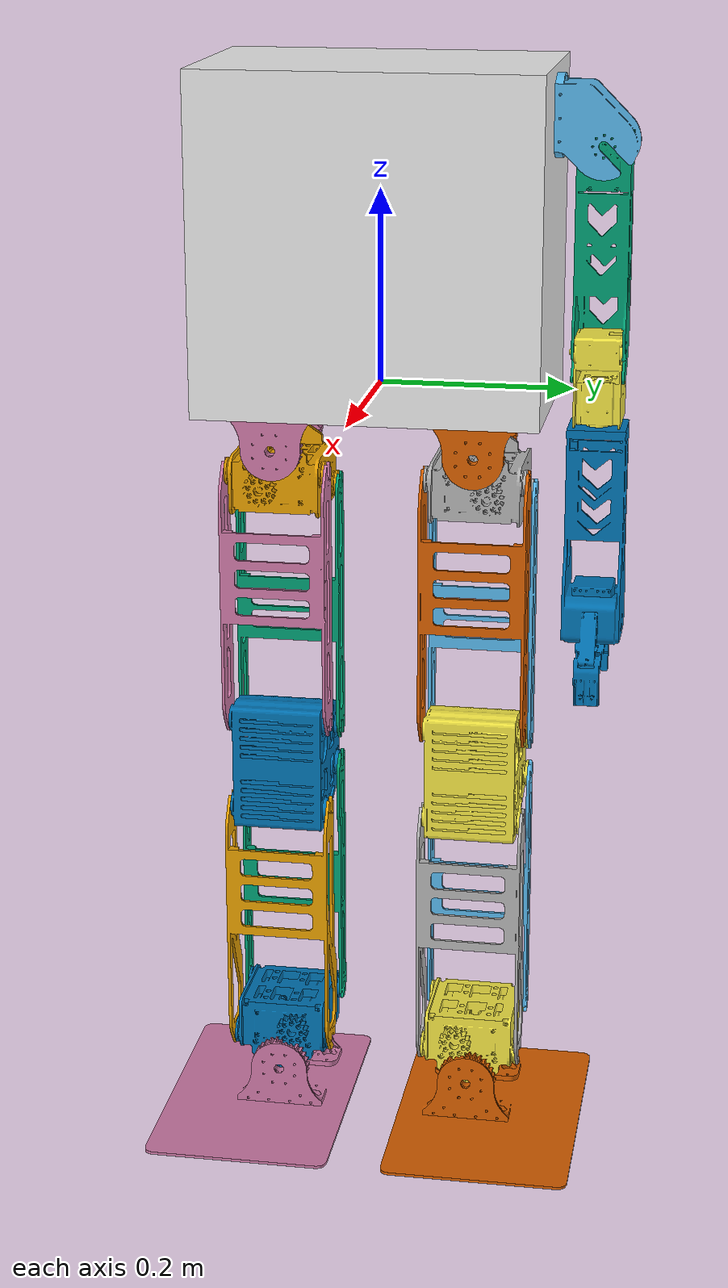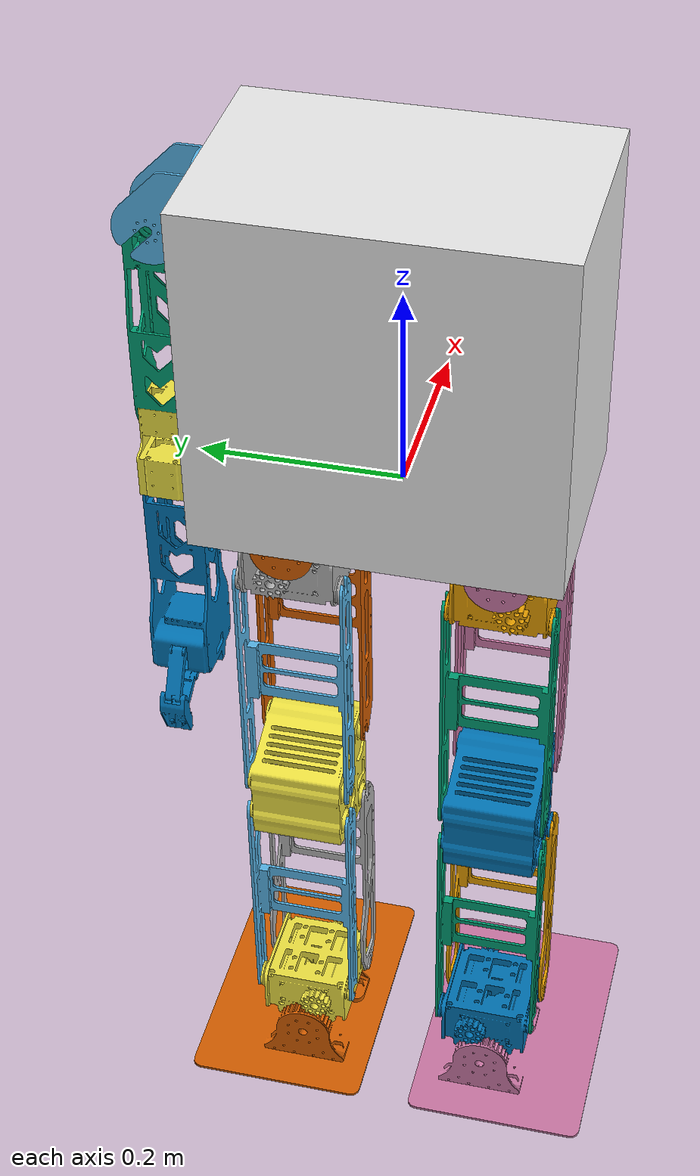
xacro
<?xml version="1.0"?>
<robot name="humanoid" xmlns:xacro="http://www.ros.org/wiki/xacro">
<xacro:include filename="$(find humanoid_description)/urdf/humanoid.gazebo.xacro" />
<xacro:include filename="$(find humanoid_description)/urdf/humanoid.transmisi.xacro" />
    <link name="base_link">
        <visual>
            <origin xyz="0.000 0.00 0.00" rpy="0.00 0.00 0.00"/>
            <geometry>
                <mesh filename="package://humanoid_description/meshes/visual/base.STL"/>
            </geometry>
        </visual>
        <collision>
            <origin xyz="0.0 0.0 0.0" rpy="0.0 0.0 0.0"/>
                <geometry>
                    <mesh filename="package://humanoid_description/meshes/collision/base_col.STL"/>
                </geometry>
        </collision>
        <inertial>
            <origin xyz="-0.004 0.000 0.201"/>
            <mass value="5.292"/>
            <inertia ixx="0.119892" ixy="-0.000007" ixz="-0.001838"
                     iyy="0.072071" iyz="-0.000003"
                     izz="0.074976"/>
        </inertial>
    </link>
<!--|||||||||||||||||||||||||||||||||||     SHOULDER          |||||||||||||||||||||||||||||||||||||||||||||||-->
    <joint name="Lshoulder_joint" type="revolute">
        <parent link="base_link"/>
        <child link="Lshoulder_link"/>
        <origin xyz="0.000034 0.177209 0.276882" rpy="0.0 0.0 0.0"/>
        <axis xyz="0 1 0"/>
        <limit lower="-0.45" upper="0.45" effort="10" velocity="3.14"/>
    </joint>
    <link name="Lshoulder_link">
        <visual>
            <origin xyz="0.000 0.000 0.000" rpy="0.00 0.00 0.00"/>
            <geometry>
                <mesh filename="package://humanoid_description/meshes/visual/Lshoulder.STL"/>
            </geometry>
        </visual>
        <collision>
            <origin xyz="0.0 0.0 0.0" rpy="0.0 0.0 0.0"/>
                <geometry>
                    <mesh filename="package://humanoid_description/meshes/collision/Lshoulder_col.STL"/>
                </geometry>
        </collision>
        <inertial>
            <origin xyz="0.000018 0.025567 -0.008154"/>
            <mass value="0.124321"/>
            <inertia ixx="0.000142" ixy="0.000000" ixz="0.000000"
                     iyy="0.000143" iyz="-0.000024"
                     izz="0.000138"/>
        </inertial>
    </link>
    <xacro:insert_transmission name="Lshoulder_joint" />

<!--|||||||||||||||||||||||||||||||||||        ARM           |||||||||||||||||||||||||||||||||||||||||||||||-->
    <joint name="Larm_joint" type="revolute">
        <parent link="Lshoulder_link"/>
        <child link="Larm_link"/>
        <origin xyz="0.02506 0.049194 -0.026717" rpy="0.0 0.0 0.0"/>
        <axis xyz="1 0 0"/>
        <limit lower="-0.15" upper="0.45" effort="10" velocity="3.14"/>
    </joint>
    <link name="Larm_link">
        <visual>
            <origin xyz="0.000 0.000 0.000" rpy="0.00 0.00 0.00"/>
            <geometry>
                <mesh filename="package://humanoid_description/meshes/visual/Larm.STL"/>
            </geometry>
        </visual>
        <collision>
            <origin xyz="0.0 0.0 0.0" rpy="0.0 0.0 0.0"/>
                <geometry>
                    <mesh filename="package://humanoid_description/meshes/collision/Larm_col.STL"/>
                </geometry>
        </collision>
        <inertial>
            <origin xyz="-0.024138 0.000000 -0.055244"/>
            <mass value="0.536868"/>
            <inertia ixx="0.002466" ixy="0.000000" ixz="0.000038"
                     iyy="0.002420" iyz="0.000000"
                     izz="0.000298"/>
        </inertial>
    </link>
    <xacro:insert_transmission name="Larm_joint" />
<!--|||||||||||||||||||||||||||||||||||     ELBOW          |||||||||||||||||||||||||||||||||||||||||||||||-->
    <joint name="Lelbow_joint" type="revolute">
        <parent link="Larm_link"/>
        <child link="Lelbow_link"/>
        <origin xyz="-0.0079 -0.0245 -0.207906" rpy="0.0 0.0 0.0"/>
        <axis xyz="0 1 0"/>
        <limit lower="-0.45" upper="0.45" effort="10" velocity="3.14"/>
    </joint>
    <link name="Lelbow_link">
        <visual>
            <origin xyz="0.000 0.000 0.000" rpy="0.00 0.00 0.00"/>
            <geometry>
                <mesh filename="package://humanoid_description/meshes/visual/Lelbow.STL"/>
            </geometry>
        </visual>
        <collision>
            <origin xyz="0.0 0.0 0.0" rpy="0.0 0.0 0.0"/>
                <geometry>
                    <mesh filename="package://humanoid_description/meshes/collision/Lelbow_col.STL"/>
                </geometry>
        </collision>
        <inertial>
            <origin xyz="-0.023724 0.024235 -0.031395"/>
            <mass value="0.587791"/>
            <inertia ixx="0.000608" ixy="-0.000002" ixz="0.000110"
                     iyy="0.000697" iyz="-0.000005"
                     izz="0.000322"/>
        </inertial>
    </link>
    <xacro:insert_transmission name="Lelbow_joint" />
<!--|||||||||||||||||||||||||||||||||||       HAND          |||||||||||||||||||||||||||||||||||||||||||||||-->
    <joint name="Lhand_joint" type="revolute">
        <parent link="Lelbow_link"/>
        <child link="Lhand_link"/>
        <origin xyz="-0.0155 0.0245 -0.078296" rpy="0.0 0.0 0.0"/>
        <axis xyz="0 0 1"/>
        <limit lower="-0.45" upper="0.45" effort="10" velocity="3.14"/>
    </joint>
    <link name="Lhand_link">
        <visual>
            <origin xyz="0.000 0.000 0.000" rpy="0.00 0.00 0.00"/>
            <geometry>
                <mesh filename="package://humanoid_description/meshes/visual/Lhand.STL"/>
            </geometry>
        </visual>
        <collision>
            <origin xyz="0.0 0.0 0.0" rpy="0.0 0.0 0.0"/>
                <geometry>
                    <mesh filename="package://humanoid_description/meshes/collision/Lhand_col.STL"/>
                </geometry>
        </collision>
        <inertial>
            <origin xyz="-0.000418 0.000039 -0.164104"/>
            <mass value="0.772383"/>
            <inertia ixx="0.003601" ixy="-0.000000" ixz="0.000011"
                     iyy="0.003625" iyz="0.000001"
                     izz="0.000636"/>
        </inertial>
    </link>
    <xacro:insert_transmission name="Lhand_joint" />
<!--|||||||||||||||||||||||||||||||||||     HIP  YAW         |||||||||||||||||||||||||||||||||||||||||||||||-->
    <joint name="Lhip_yaw_joint" type="revolute">
        <parent link="base_link"/>
        <child link="Lhip_yaw_link"/>
        <origin xyz="0.000 0.105 -0.02" rpy="0.0 0.0 0.0"/>
        <axis xyz="0 0 1"/>
        <limit lower="-0.45" upper="0.45" effort="10" velocity="3.14"/>
    </joint>
    <link name="Lhip_yaw_link">
        <visual>
            <origin xyz="0.000 0.000 0.000" rpy="0.00 0.00 0.00"/>
            <geometry>
                <mesh filename="package://humanoid_description/meshes/visual/Lhip_yaw.STL"/>
            </geometry>
        </visual>
        <collision>
            <origin xyz="0.0 0.0 0.0" rpy="0.0 0.0 0.0"/>
                <geometry>
                    <mesh filename="package://humanoid_description/meshes/collision/Lhip_yaw_col.STL"/>
                </geometry>
        </collision>
        <inertial>
            <origin xyz="0.000 0.000 -0.026189"/>
            <mass value="0.408755"/>
            <inertia ixx="0.000164" ixy="0.000000" ixz="0.000001"
                     iyy="0.000476" iyz="0.000000"
                     izz="0.000486"/>
        </inertial>
    </link>
    <joint name="Rhip_yaw_joint" type="revolute">
        <parent link="base_link"/>
        <child link="Rhip_yaw_link"/>
        <origin xyz="0.000 -0.105 -0.02" rpy="0.0 0.0 0.0"/>
        <axis xyz="0 0 1"/>
        <limit lower="-0.45" upper="0.45" effort="10" velocity="3.14"/>
    </joint>
    <link name="Rhip_yaw_link">
        <visual>
            <origin xyz="0.000 0.000 0.000" rpy="0.00 0.00 0.00"/>
            <geometry>
                <mesh filename="package://humanoid_description/meshes/visual/Rhip_yaw.STL"/>
            </geometry>
        </visual>
        <collision>
            <origin xyz="0.0 0.0 0.0" rpy="0.0 0.0 0.0"/>
                <geometry>
                    <mesh filename="package://humanoid_description/meshes/collision/Rhip_yaw_col.STL"/>
                </geometry>
        </collision>
        <inertial>
            <origin xyz="0.000 0.000 -0.026189"/>
            <mass value="0.408755"/>
            <inertia ixx="0.000164" ixy="0.000000" ixz="0.000001"
                     iyy="0.000476" iyz="0.000000"
                     izz="0.000486"/>
        </inertial>
    </link>
    <xacro:insert_transmission name="Rhip_yaw_joint" />
    <xacro:insert_transmission name="Lhip_yaw_joint" />
<!--|||||||||||||||||||||||||||||||||||     HIP  ROLL        |||||||||||||||||||||||||||||||||||||||||||||||-->
   <joint name="Lhip_roll_joint" type="revolute">
        <parent link="Lhip_yaw_link"/>
        <child link="Lhip_roll_link"/>
        <origin xyz="0.05179 0.0 -0.0425" rpy="0.0 0.0 0.0"/>
        <limit lower="-0.45" upper="0.45" effort="100.0" velocity="3.14"/>
        <axis xyz="1 0 0"/>
    </joint>
    <link name="Lhip_roll_link">
        <visual>
            <origin xyz="0.000 0.000 0.000" rpy="0.00 0.00 0.00"/>
            <geometry>
                <mesh filename="package://humanoid_description/meshes/visual/Lhip_roll.STL"/>
            </geometry>
        </visual>
        <collision>
            <origin xyz="0.0 0.0 0.0" rpy="0.0 0.0 0.0"/>
                <geometry>
                    <mesh filename="package://humanoid_description/meshes/collision/Lhip_roll_col.STL"/>
                </geometry>
        </collision>
        <inertial>
            <origin xyz="-0.051690 -0.000153 -0.041860"/>
            <mass value="1.107543"/>
            <inertia ixx="0.001185" ixy="-0.000000" ixz="0.000012"
                     iyy="0.001362" iyz="0.000001"
                     izz="0.001901"/>
        </inertial>
    </link>
    <joint name="Rhip_roll_joint" type="revolute">
        <parent link="Rhip_yaw_link"/>
        <child link="Rhip_roll_link"/>
        <origin xyz="0.05179 0.0 -0.0425" rpy="0.0 0.0 0.0"/>
        <limit lower="-0.45" upper="0.45" effort="10.0" velocity="3.14"/>
        <axis xyz="1 0 0"/>
    </joint>
    <link name="Rhip_roll_link">
        <visual>
            <origin xyz="0.000 0.000 0.000" rpy="0.00 0.00 0.00"/>
            <geometry>
                <mesh filename="package://humanoid_description/meshes/visual/Rhip_roll.STL"/>
            </geometry>
        </visual>
        <collision>
            <origin xyz="0.0 0.0 0.0" rpy="0.0 0.0 0.0"/>
                <geometry>
                    <mesh filename="package://humanoid_description/meshes/collision/Rhip_roll_col.STL"/>
                </geometry>
        </collision>
        <inertial>
            <origin xyz="-0.051690 -0.000153 -0.041860"/>
            <mass value="1.107543"/>
            <inertia ixx="0.001185" ixy="-0.000000" ixz="0.000012"
                     iyy="0.001362" iyz="0.000001"
                     izz="0.001901"/>
        </inertial>
    </link>
    <xacro:insert_transmission name="Rhip_roll_joint" />
    <xacro:insert_transmission name="Lhip_roll_joint" />
<!--|||||||||||||||||||||||||||||||||||  PAHA BELAKANG       |||||||||||||||||||||||||||||||||||||||||||||||-->
    <joint name="Lpaha_belakang_joint" type="revolute">
        <parent link="Lhip_roll_link"/>
        <child link="Lpaha_belakang_link"/>
        <origin xyz="-0.08744 0.05279 -0.05804" rpy="0.0 0.0 0.0"/>
        <limit lower="-0.45" upper="0.45" effort="10.0" velocity="3.14"/>
        <axis xyz="0 1 0"/>
    </joint>
    <link name="Lpaha_belakang_link">
        <visual>
            <origin xyz="0.000 0.000 0.000" rpy="0.00 0.00 0.00"/>
            <geometry>
                <mesh filename="package://humanoid_description/meshes/visual/Lpaha_belakang.STL"/>
            </geometry>
        </visual>
        <collision>
            <origin xyz="0.0 0.0 0.0" rpy="0.0 0.0 0.0"/>
                <geometry>
                    <mesh filename="package://humanoid_description/meshes/collision/Lpaha_belakang_col.STL"/>
                </geometry>
        </collision>
        <inertial>
            <origin xyz="0.007787 -0.052720 -0.137499"/>
            <mass value="0.168201"/>
            <inertia ixx="0.001266" ixy="0.000000" ixz="-0.000001"
                     iyy="0.000870" iyz="0.000000"
                     izz="0.000444"/>
        </inertial>
    </link>
    <joint name="Rpaha_belakang_joint" type="revolute">
        <parent link="Rhip_roll_link"/>
        <child link="Rpaha_belakang_link"/>
        <origin xyz="-0.08744 0.05279 -0.05804" rpy="0.0 0.0 0.0"/>
        <limit lower="-0.45" upper="0.45" effort="10.0" velocity="3.14"/>
        <axis xyz="0 1 0"/>
    </joint>
    <link name="Rpaha_belakang_link">
        <visual>
            <origin xyz="0.000 0.000 0.000" rpy="0.00 0.00 0.00"/>
            <geometry>
                <mesh filename="package://humanoid_description/meshes/visual/Rpaha_belakang.STL"/>
            </geometry>
        </visual>
        <collision>
            <origin xyz="0.0 0.0 0.0" rpy="0.0 0.0 0.0"/>
                <geometry>
                    <mesh filename="package://humanoid_description/meshes/collision/Rpaha_belakang_col.STL"/>
                </geometry>
        </collision>
        <inertial>
            <origin xyz="0.007787 -0.052720 -0.137499"/>
            <mass value="0.168201"/>
            <inertia ixx="0.001266" ixy="0.000000" ixz="-0.000001"
                     iyy="0.000870" iyz="0.000000"
                     izz="0.000444"/>
        </inertial>
    </link>
    <xacro:mimic_joint_plugin_gazebo name_prefix="Rpaha_belakang_joint"
                                     parent_joint="Rlutut_joint"
                                     mimic_joint="Rpaha_belakang_joint"
                                     has_pid="false"
                                     multiplier="1.0"
                                     max_effort="10.6" />
    <xacro:mimic_joint_plugin_gazebo name_prefix="Lpaha_belakang_joint"
                                     parent_joint="Llutut_joint"
                                     mimic_joint="Lpaha_belakang_joint"
                                     has_pid="false"
                                     multiplier="1.0"
                                     max_effort="10.6" />
    <xacro:insert_transmission name="Rpaha_belakang_joint" />
    <xacro:insert_transmission name="Lpaha_belakang_joint" />
<!--|||||||||||||||||||||||||||||||||||       LUTUT          |||||||||||||||||||||||||||||||||||||||||||||||-->
    <joint name="Llutut_joint" type="revolute">
        <parent link="Lpaha_belakang_link"/>
        <child link="Llutut_link"/>
        <origin xyz="0.0 0.0 -0.275" rpy="0.0 0.0 0.0"/>
        <limit lower="-0.45" upper="0.45" effort="10.0" velocity="3.14"/>
        <axis xyz="0 -1 0"/>
    </joint>
    <link name="Llutut_link">
        <visual>
            <origin xyz="0.000 0.000 0.000" rpy="0.00 0.00 0.00"/>
            <geometry>
                <mesh filename="package://humanoid_description/meshes/visual/Llutut.STL"/>
            </geometry>
        </visual>
        <collision>
            <origin xyz="0.0 0.0 0.0" rpy="0.0 0.0 0.0"/>
                <geometry>
                    <mesh filename="package://humanoid_description/meshes/collision/Llutut_col.STL"/>
                </geometry>
        </collision>
        <inertial>
            <origin xyz="0.041262 -0.041430 -0.021997"/>
            <mass value="1.901538"/>
            <inertia ixx="0.004405" ixy="0.000051" ixz="0.000000"
                     iyy="0.005540" iyz="0.000000"
                     izz="0.004002"/>
        </inertial>
    </link>
    <joint name="Rlutut_joint" type="revolute">
        <parent link="Rpaha_belakang_link"/>
        <child link="Rlutut_link"/>
        <origin xyz="0.0 0.0 -0.275" rpy="0.0 0.0 0.0"/>
        <limit lower="-0.45" upper="0.45" effort="10.0" velocity="3.14"/>
        <axis xyz="0 -1 0"/>
    </joint>
    <link name="Rlutut_link">
        <visual>
            <origin xyz="0.000 0.000 0.000" rpy="0.00 0.00 0.00"/>
            <geometry>
                <mesh filename="package://humanoid_description/meshes/visual/Rlutut.STL"/>
            </geometry>
        </visual>
        <collision>
            <origin xyz="0.0 0.0 0.0" rpy="0.0 0.0 0.0"/>
                <geometry>
                    <mesh filename="package://humanoid_description/meshes/collision/Rlutut_col.STL"/>
                </geometry>
        </collision>
         <inertial>
            <origin xyz="0.041262 -0.041430 -0.021997"/>
            <mass value="1.901538"/>
            <inertia ixx="0.004405" ixy="0.000051" ixz="0.000000"
                     iyy="0.005540" iyz="0.000000"
                     izz="0.004002"/>
        </inertial>
    </link>
    <xacro:insert_transmission name="Rlutut_joint" />
    <xacro:insert_transmission name="Llutut_joint" />
<!--|||||||||||||||||||||||||||||||||||   PAHA DEPAN         |||||||||||||||||||||||||||||||||||||||||||||||-->
     <joint name="Lpaha_depan_joint" type="revolute">
        <parent link="Llutut_link"/>
        <child link="Lpaha_depan_link"/>
        <origin xyz="0.0715 0.000 0.028" rpy="0.0 0.0 0.0"/>
        <limit lower="-0.45" upper="0.45" effort="10.0" velocity="3.14"/>
        <axis xyz="0 1 0"/>
    </joint>
    <link name="Lpaha_depan_link">
        <visual>
            <origin xyz="0.000 0.000 0.000" rpy="0.00 0.00 0.00"/>
            <geometry>
                <mesh filename="package://humanoid_description/meshes/visual/Lpaha_depan.STL"/>
            </geometry>
        </visual>
        <collision>
            <origin xyz="0.0 0.0 0.0" rpy="0.0 0.0 0.0"/>
                <geometry>
                    <mesh filename="package://humanoid_description/meshes/collision/Lpaha_depan_col.STL"/>
                </geometry>
        </collision>
        <inertial>
            <origin xyz="0.013333 -0.052743 0.147571"/>
            <mass value="0.232652"/>
            <inertia ixx="0.001754" ixy="0.000000" ixz="0.000028"
                     iyy="0.001222" iyz="0.000000"
                     izz="0.000630"/>
        </inertial>
    </link>

    <joint name="Rpaha_depan_joint" type="revolute">
        <parent link="Rlutut_link"/>
        <child link="Rpaha_depan_link"/>
        <origin xyz="0.0715 0.000 0.028" rpy="0.0 0.0 0.0"/>
        <limit lower="-0.45" upper="0.45" effort="10.0" velocity="3.14"/>
        <axis xyz="0 1 0"/>
    </joint>
    <link name="Rpaha_depan_link">
        <visual>
            <origin xyz="0.000 0.000 0.000" rpy="0.00 0.00 0.00"/>
            <geometry>
                <mesh filename="package://humanoid_description/meshes/visual/Rpaha_depan.STL"/>
            </geometry>
        </visual>
        <collision>
            <origin xyz="0.0 0.0 0.0" rpy="0.0 0.0 0.0"/>
                <geometry>
                    <mesh filename="package://humanoid_description/meshes/collision/Rpaha_depan_col.STL"/>
                </geometry>
        </collision>
        <inertial>
            <origin xyz="0.013333 -0.052743 0.147571"/>
            <mass value="0.232652"/>
            <inertia ixx="0.001754" ixy="0.000000" ixz="0.000028"
                     iyy="0.001222" iyz="0.000000"
                     izz="0.000630"/>
        </inertial>
    </link>
    <xacro:mimic_joint_plugin_gazebo name_prefix="Rpaha_depan_joint"
                                     parent_joint="Rlutut_joint"
                                     mimic_joint="Rpaha_depan_joint"
                                     has_pid="false"
                                     multiplier="1.0"
                                     max_effort="10.6" />
    <xacro:mimic_joint_plugin_gazebo name_prefix="Lpaha_depan_joint"
                                     parent_joint="Llutut_joint"
                                     mimic_joint="Lpaha_depan_joint"
                                     has_pid="false"
                                     multiplier="1.0"
                                     max_effort="10.6" />
    <xacro:insert_transmission name="Rpaha_depan_joint" />
    <xacro:insert_transmission name="Lpaha_depan_joint" />
<!--|||||||||||||||||||||||||||||||||||    BETIS DEPAN       |||||||||||||||||||||||||||||||||||||||||||||||-->
    <joint name="Lbetis_depan_joint" type="revolute">
        <parent link="Llutut_link"/>
        <child link="Lbetis_depan_link"/>
        <origin xyz="0.0715 0.000 -0.071992" rpy="0.0 0.0 0.0"/>
        <limit lower="-0.45" upper="0.45" effort="10.0" velocity="3.14"/>
        <axis xyz="0 1 0"/>
    </joint>
    <link name="Lbetis_depan_link">
        <visual>
            <origin xyz="0.00 0.00 0.00" rpy="0.00 0.00 0.00"/>
            <geometry>
                <mesh filename="package://humanoid_description/meshes/visual/Lbetis_depan.STL"/>
            </geometry>
        </visual>
        <collision>
            <origin xyz="0.0 0.0 0.0" rpy="0.0 0.0 0.0"/>
                <geometry>
                    <mesh filename="package://humanoid_description/meshes/collision/Lbetis_depan_col.STL"/>
                </geometry>
        </collision>
        <inertial>
            <origin xyz="0.025389 -0.052925 -0.092950"/>
            <mass value="0.082810"/>
            <inertia ixx="0.000217" ixy="0.000000" ixz="0.000078"
                     iyy="0.000077" iyz="0.000000"
                     izz="0.000142"/>
        </inertial>
    </link>
    <joint name="Rbetis_depan_joint" type="revolute">
        <parent link="Rlutut_link"/>
        <child link="Rbetis_depan_link"/>
        <origin xyz="0.0715 0.000 -0.071992" rpy="0.0 0.0 0.0"/>
        <limit lower="-0.45" upper="0.45" effort="10.0" velocity="3.14"/>
        <axis xyz="0 1 0"/>
    </joint>
    <link name="Rbetis_depan_link">
        <visual>
            <origin xyz="0.00 0.00 0.00" rpy="0.00 0.00 0.00"/>
            <geometry>
                <mesh filename="package://humanoid_description/meshes/visual/Rbetis_depan.STL"/>
            </geometry>
        </visual>
        <collision>
            <origin xyz="0.0 0.0 0.0" rpy="0.0 0.0 0.0"/>
                <geometry>
                    <mesh filename="package://humanoid_description/meshes/collision/Rbetis_depan_col.STL"/>
                </geometry>
        </collision>
        <inertial>
            <origin xyz="0.025389 -0.052925 -0.092950"/>
            <mass value="0.082810"/>
            <inertia ixx="0.000217" ixy="0.000000" ixz="0.000078"
                     iyy="0.000077" iyz="0.000000"
                     izz="0.000142"/>
        </inertial>
    </link>
    <xacro:mimic_joint_plugin_gazebo name_prefix="Rbetis_depan_joint"
                                     parent_joint="Rbetis_belakang_joint"
                                     mimic_joint="Rbetis_depan_joint"
                                     has_pid="false"
                                     multiplier="1.0"
                                     max_effort="10.6" />
    <xacro:mimic_joint_plugin_gazebo name_prefix="Lbetis_depan_joint"
                                     parent_joint="Lbetis_belakang_joint"
                                     mimic_joint="Lbetis_depan_joint"
                                     has_pid="false"
                                     multiplier="1.0"
                                     max_effort="10.6" />
    <xacro:insert_transmission name="Rbetis_depan_joint" />
    <xacro:insert_transmission name="Lbetis_depan_joint" />
<!--|||||||||||||||||||||||||||||||||||     BETIS BELAKANG   |||||||||||||||||||||||||||||||||||||||||||||||-->
    <joint name="Lbetis_belakang_joint" type="revolute">
        <parent link="Llutut_link"/>
        <child link="Lbetis_belakang_link"/>
        <origin xyz="0.000 0.000 -0.043992" rpy="0.0 0.0 0.0"/>
        <limit lower="-0.45" upper="0.45" effort="10.0" velocity="3.14"/>
        <axis xyz="0 1 0"/>
    </joint>
    <link name="Lbetis_belakang_link">
        <visual>
            <origin xyz="0.00 0.00 0.00" rpy="0.00 0.00 0.00"/>
            <geometry>
                <mesh filename="package://humanoid_description/meshes/visual/Lbetis_belakang.STL"/>
            </geometry>
        </visual>
        <collision>
            <origin xyz="0.0 0.0 0.0" rpy="0.0 0.0 0.0"/>
                <geometry>
                    <mesh filename="package://humanoid_description/meshes/collision/Lbetis_belakang_col.STL"/>
                </geometry>
        </collision>
        <inertial>
            <origin xyz="0.004340 -0.052765 -0.136269"/>
            <mass value="0.163307"/>
            <inertia ixx="0.001208" ixy="0.000000" ixz="0.000008"
                     iyy="0.000817" iyz="0.000000"
                     izz="0.000422"/>
        </inertial>
    </link>
    <joint name="Rbetis_belakang_joint" type="revolute">
        <parent link="Rlutut_link"/>
        <child link="Rbetis_belakang_link"/>
        <origin xyz="0.000 0.000 -0.043992" rpy="0.0 0.0 0.0"/>
        <limit lower="-0.45" upper="0.45" effort="10.0" velocity="3.14"/>
        <axis xyz="0 1 0"/>
    </joint>
    <link name="Rbetis_belakang_link">
        <visual>
            <origin xyz="0.00 0.00 0.00" rpy="0.00 0.00 0.00"/>
            <geometry>
                <mesh filename="package://humanoid_description/meshes/visual/Rbetis_belakang.STL"/>
            </geometry>
        </visual>
        <collision>
            <origin xyz="0.0 0.0 0.0" rpy="0.0 0.0 0.0"/>
                <geometry>
                    <mesh filename="package://humanoid_description/meshes/collision/Rbetis_belakang_col.STL"/>
                </geometry>
        </collision>
        <inertial>
            <origin xyz="0.004340 -0.052765 -0.136269"/>
            <mass value="0.163307"/>
            <inertia ixx="0.001208" ixy="0.000000" ixz="0.000008"
                     iyy="0.000817" iyz="0.000000"
                     izz="0.000422"/>
        </inertial>
    </link>
    <xacro:insert_transmission name="Rbetis_belakang_joint" />
    <xacro:insert_transmission name="Lbetis_belakang_joint" />
<!--|||||||||||||||||||||||||||||||||||         ANKLE        |||||||||||||||||||||||||||||||||||||||||||||||-->
    <joint name="Lankle_joint" type="revolute">
        <parent link="Lbetis_belakang_link"/>
        <child link="Lankle_link"/>
        <origin xyz="0.000 0.000 -0.275" rpy="0.0 0.0 0.0"/>
        <limit lower="-0.45" upper="0.45" effort="10.0" velocity="3.14"/>
        <axis xyz="0 1 0"/>
    </joint>

    <link name="Lankle_link">
        <visual>
            <origin xyz="0.00 0.00 0.00" rpy="0.00 0.00 0.00"/>
            <geometry>
                <mesh filename="package://humanoid_description/meshes/visual/Lankle.STL"/>
            </geometry>
        </visual>
        <collision>
            <origin xyz="0.0 0.0 0.0" rpy="0.0 0.0 0.0"/>
                <geometry>
                    <mesh filename="package://humanoid_description/meshes/collision/Lankle_col.STL"/>
                </geometry>
        </collision>
        <inertial>
            <origin xyz="0.035750 -0.052944 -0.016184"/>
            <mass value="1.107543"/>
            <inertia ixx="0.001185" ixy="0.000000" ixz="-0.000012"
                     iyy="0.001362" iyz="-0.000001"
                     izz="0.001901"/>
        </inertial>
    </link>
    <joint name="Rankle_joint" type="revolute">
        <parent link="Rbetis_belakang_link"/>
        <child link="Rankle_link"/>
        <origin xyz="0.000 0.000 -0.275" rpy="0.0 0.0 0.0"/>
        <limit lower="-0.45" upper="0.45" effort="10.0" velocity="3.14"/>
        <axis xyz="0 -1 0"/>
    </joint>

    <link name="Rankle_link">
        <visual>
            <origin xyz="0.00 0.00 0.00" rpy="0.00 0.00 0.00"/>
            <geometry>
                <mesh filename="package://humanoid_description/meshes/visual/Rankle.STL"/>
            </geometry>
        </visual>
        <collision>
            <origin xyz="0.0 0.0 0.0" rpy="0.0 0.0 0.0"/>
                <geometry>
                    <mesh filename="package://humanoid_description/meshes/collision/Rankle_col.STL"/>
                </geometry>
        </collision>
        <inertial>
            <origin xyz="0.035750 -0.052944 -0.016184"/>
            <mass value="1.107543"/>
            <inertia ixx="0.001185" ixy="0.000000" ixz="-0.000012"
                     iyy="0.001362" iyz="-0.000001"
                     izz="0.001901"/>
        </inertial>
    </link>
    <xacro:mimic_joint_plugin_gazebo name_prefix="Rankle_joint"
                                     parent_joint="Rbetis_belakang_joint"
                                     mimic_joint="Rankle_joint"
                                     has_pid="false"
                                     multiplier="1.0"
                                     max_effort="10.6" />
    <xacro:mimic_joint_plugin_gazebo name_prefix="Lankle_joint"
                                     parent_joint="Lbetis_belakang_joint"
                                     mimic_joint="Lankle_joint"
                                     has_pid="false"
                                     multiplier="1.0"
                                     max_effort="10.6" />
    <xacro:insert_transmission name="Rankle_joint" />
    <xacro:insert_transmission name="Lankle_joint" />
<!--|||||||||||||||||||||||||||||||||||       TELAPAK        |||||||||||||||||||||||||||||||||||||||||||||||-->
    <joint name="Ltelapak_joint" type="revolute">
        <parent link="Lankle_link"/>
        <child link="Ltelapak_link"/>
        <origin xyz="0.08744 -0.05279 -0.05804" rpy="0.0 0.0 0.0"/>
        <limit lower="-0.45" upper="0.45" effort="10.0" velocity="3.14"/>
        <axis xyz="1 0 0"/>
    </joint>
    <link name="Ltelapak_link">
        <visual>
            <origin xyz="0.00 0.00 0.00" rpy="0.00 0.00 0.00"/>
            <geometry>
                <mesh filename="package://humanoid_description/meshes/visual/Ltelapak.STL"/>
            </geometry>
        </visual>
        <collision>
            <origin xyz="0.0 0.0 0.0" rpy="0.0 0.0 0.0"/>
                <geometry>
                    <mesh filename="package://humanoid_description/meshes/collision/Ltelapak_col.STL"/>
                </geometry>
        </collision>
        <inertial>
            <origin xyz="-0.027367 0.014066 -0.030664"/>
            <mass value="0.836007"/>
            <inertia ixx="0.002250" ixy="0.000207" ixz="-0.000271"
                     iyy="0.005430" iyz="-0.000157"
                     izz="0.006932"/>
        </inertial>
    </link>
    <joint name="Rtelapak_joint" type="revolute">
        <parent link="Rankle_link"/>
        <child link="Rtelapak_link"/>
        <origin xyz="0.08744 -0.05279 -0.05804" rpy="0.0 0.0 0.0"/>
        <limit lower="-0.45" upper="0.45" effort="10.0" velocity="3.14"/>
        <axis xyz="1 0 0"/>
    </joint>
    <link name="Rtelapak_link">
        <visual>
            <origin xyz="0.00 0.00 0.00" rpy="0.00 0.00 0.00"/>
            <geometry>
                <mesh filename="package://humanoid_description/meshes/visual/Rtelapak.STL"/>
            </geometry>
        </visual>
        <collision>
            <origin xyz="0.0 0.0 0.0" rpy="0.0 0.0 0.0"/>
                <geometry>
                    <mesh filename="package://humanoid_description/meshes/collision/Rtelapak_col.STL"/>
                </geometry>
        </collision>
        <inertial>
            <origin xyz="-0.027448 -0.014066 -0.030664"/>
            <mass value="0.836007"/>
            <inertia ixx="0.002250" ixy="-0.000205" ixz="-0.000269"
                     iyy="0.005417" iyz="0.000157"
                     izz="0.006920"/>
        </inertial>
    </link>
    <xacro:insert_transmission name="Rtelapak_joint" />
    <xacro:insert_transmission name="Ltelapak_joint" />

    <joint name="Rend_effector_fixed_joint" type="fixed">
        <parent link="Rtelapak_link"/>
        <child link="Rend_effector_link"/>
        <origin xyz="-0.00979 -0.02423 -0.0455" rpy="0.0 0.0 0.0"/>
    </joint>

    <link name="Rend_effector_link">

    </link>

    <joint name="Lend_effector_fixed_joint" type="fixed">
        <parent link="Ltelapak_link"/>
        <child link="Lend_effector_link"/>
        <origin xyz="-0.00979 0.02423 -0.0455" rpy="0.0 0.0 0.0"/>
    </joint>

    <link name="Lend_effector_link">

    </link>

</robot>
